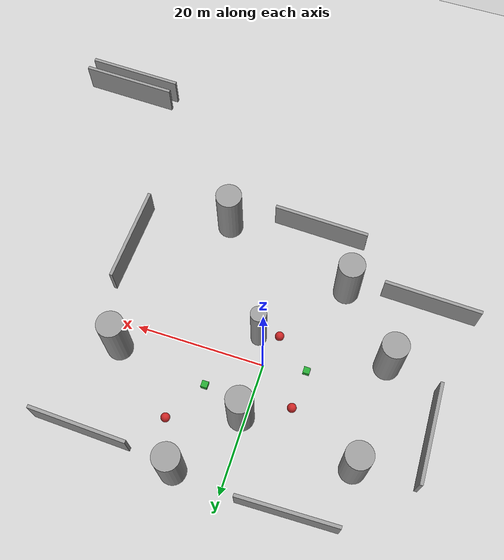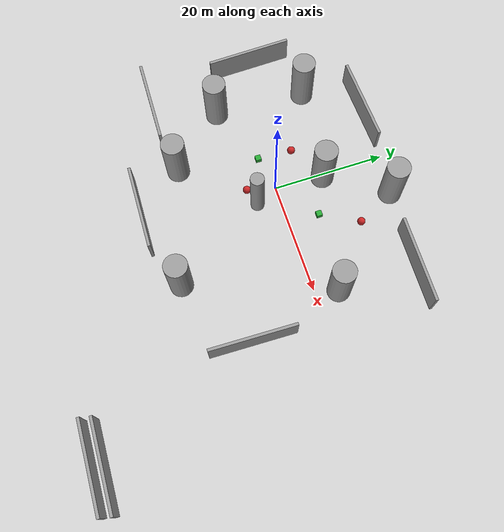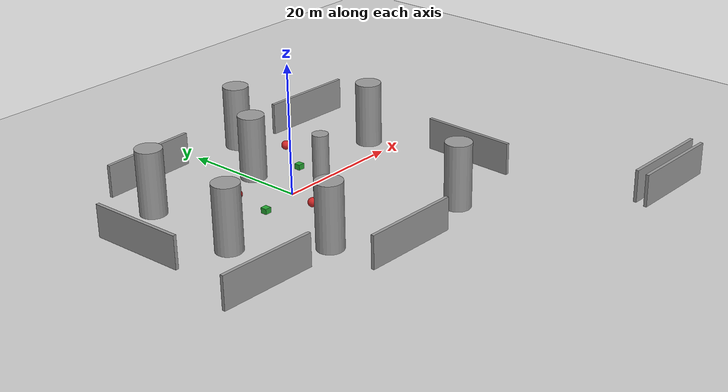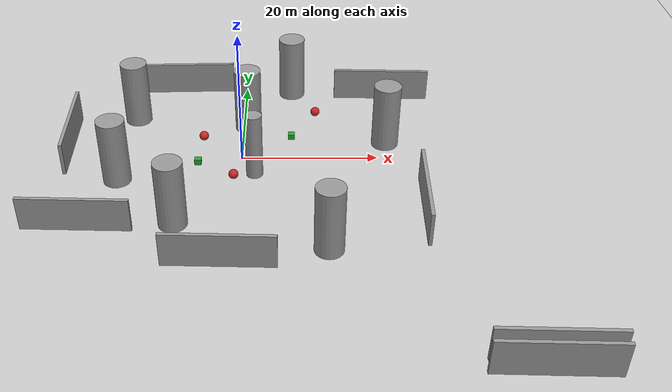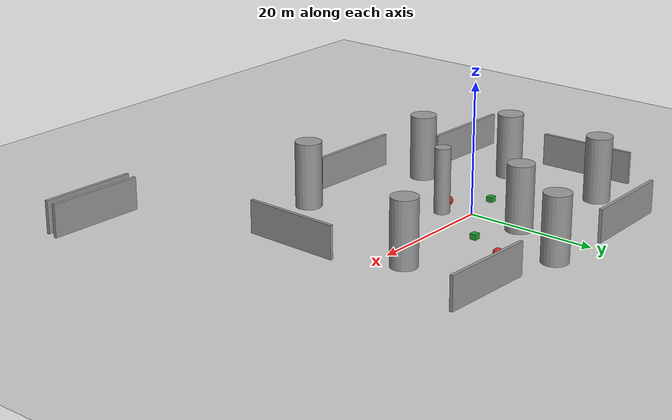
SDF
<sdf version="1.4">
 <world name="default">
  <light name="sun" type="directional">
   <pose>0 0 10 0 -0 0</pose>
   <diffuse>0.8 0.8 0.8 1</diffuse>
   <specular>0.2 0.2 0.2 1</specular>
   <attenuation>
    <range>1000</range>
    <constant>0.9</constant>
    <linear>0.01</linear>
    <quadratic>0.001</quadratic>
   </attenuation>
   <direction>-0.5 0.1 -0.9</direction>
  </light>
  <model name="ground_plane">
   <static>1</static>
   <link name="link">
    <collision name="collision">
     <geometry><plane><normal>0 0 1</normal><size>0 0</size></plane></geometry>
     <surface><friction><ode><mu>100</mu><mu2>50</mu2></ode></friction></surface>
    </collision>
    <visual name="visual">
     <cast_shadows>0</cast_shadows>
     <geometry><plane><normal>0 0 1</normal><size>0 0</size></plane></geometry>
     <material>
      <script><uri>file://media/materials/scripts/gazebo.material</uri><name>Gazebo/Grey</name></script>
     </material>
    </visual>
    <velocity_decay><linear>0</linear><angular>0</angular></velocity_decay>
   </link>
  </model>
  <physics type="ode">
   <max_step_size>0.001</max_step_size>
   <real_time_factor>1</real_time_factor>
   <real_time_update_rate>1000</real_time_update_rate>
   <gravity>0 0 -9.8</gravity>
  </physics>
  <scene><ambient>0.4 0.4 0.4 1</ambient><background>0.7 0.7 0.7 1</background><shadows>1</shadows></scene>
  <spherical_coordinates>
   <surface_model>EARTH_WGS84</surface_model>
   <latitude_deg>0</latitude_deg>
   <longitude_deg>0</longitude_deg>
   <elevation>0</elevation>
   <heading_deg>0</heading_deg>
  </spherical_coordinates>
  <model name="unit_cylinder_1">
   <pose>-8.56293 -15.4123 4.99999 -0 -0 -0.000106</pose>
   <link name="link">
    <inertial>
     <mass>1</mass>
     <inertia><ixx>1</ixx><ixy>0</ixy><ixz>0</ixz><iyy>1</iyy><iyz>0</iyz><izz>1</izz></inertia>
    </inertial>
    <collision name="collision">
     <geometry><cylinder><radius>2</radius><length>10</length></cylinder></geometry>
    </collision>
    <visual name="visual">
     <geometry><cylinder><radius>2</radius><length>10</length></cylinder></geometry>
     <material>
      <script><uri>file://media/materials/scripts/gazebo.material</uri><name>Gazebo/Grey</name></script>
     </material>
    </visual>
    <velocity_decay><linear>0</linear><angular>0</angular></velocity_decay>
   </link>
   <static>0</static>
  </model>
  <model name="unit_cylinder_2">
   <pose>7.33317 18.7739 4.99999 -0 -0 -0.000101</pose>
   <link name="link">
    <inertial>
     <mass>1</mass>
     <inertia><ixx>1</ixx><ixy>0</ixy><ixz>0</ixz><iyy>1</iyy><iyz>0</iyz><izz>1</izz></inertia>
    </inertial>
    <collision name="collision">
     <geometry><cylinder><radius>2</radius><length>10</length></cylinder></geometry>
    </collision>
    <visual name="visual">
     <geometry><cylinder><radius>2</radius><length>10</length></cylinder></geometry>
     <material>
      <script><uri>file://media/materials/scripts/gazebo.material</uri><name>Gazebo/Grey</name></script>
     </material>
    </visual>
    <velocity_decay><linear>0</linear><angular>0</angular></velocity_decay>
   </link>
   <static>0</static>
  </model>
  <model name="unit_cylinder_3">
   <pose>12.2266 -20.7777 5 0 -0 -0.0001</pose>
   <link name="link">
    <inertial>
     <mass>1</mass>
     <inertia><ixx>1</ixx><ixy>0</ixy><ixz>0</ixz><iyy>1</iyy><iyz>0</iyz><izz>1</izz></inertia>
    </inertial>
    <collision name="collision">
     <geometry><cylinder><radius>2</radius><length>10</length></cylinder></geometry>
    </collision>
    <visual name="visual">
     <geometry><cylinder><radius>2</radius><length>10</length></cylinder></geometry>
     <material>
      <script><uri>file://media/materials/scripts/gazebo.material</uri><name>Gazebo/Grey</name></script>
     </material>
    </visual>
    <velocity_decay><linear>0</linear><angular>0</angular></velocity_decay>
   </link>
   <static>0</static>
  </model>
  <model name="unit_cylinder_4">
   <pose>-17.5766 -5.45116 4.99999 -0 -0 -0.000102</pose>
   <link name="link">
    <inertial>
     <mass>1</mass>
     <inertia><ixx>1</ixx><ixy>0</ixy><ixz>0</ixz><iyy>1</iyy><iyz>0</iyz><izz>1</izz></inertia>
    </inertial>
    <collision name="collision">
     <geometry><cylinder><radius>2</radius><length>10</length></cylinder></geometry>
    </collision>
    <visual name="visual">
     <geometry><cylinder><radius>2</radius><length>10</length></cylinder></geometry>
     <material>
      <script><uri>file://media/materials/scripts/gazebo.material</uri><name>Gazebo/Grey</name></script>
     </material>
    </visual>
    <velocity_decay><linear>0</linear><angular>0</angular></velocity_decay>
   </link>
   <static>0</static>
  </model>
  <model name="unit_cylinder_5">
   <pose>0.636376 8.54346 4.99999 -0 -0 -0.000103</pose>
   <link name="link">
    <inertial>
     <mass>1</mass>
     <inertia><ixx>1</ixx><ixy>0</ixy><ixz>0</ixz><iyy>1</iyy><iyz>0</iyz><izz>1</izz></inertia>
    </inertial>
    <collision name="collision">
     <geometry><cylinder><radius>2</radius><length>10</length></cylinder></geometry>
    </collision>
    <visual name="visual">
     <geometry><cylinder><radius>2</radius><length>10</length></cylinder></geometry>
     <material>
      <script><uri>file://media/materials/scripts/gazebo.material</uri><name>Gazebo/Grey</name></script>
     </material>
    </visual>
    <velocity_decay><linear>0</linear><angular>0</angular></velocity_decay>
   </link>
   <static>0</static>
  </model>
  <model name="unit_cylinder_6">
   <pose>-16.7429 10.7723 4.99999 -0 -0 -0.000104</pose>
   <link name="link">
    <inertial>
     <mass>1</mass>
     <inertia><ixx>1</ixx><ixy>0</ixy><ixz>0</ixz><iyy>1</iyy><iyz>0</iyz><izz>1</izz></inertia>
    </inertial>
    <collision name="collision">
     <geometry><cylinder><radius>2</radius><length>10</length></cylinder></geometry>
    </collision>
    <visual name="visual">
     <geometry><cylinder><radius>2</radius><length>10</length></cylinder></geometry>
     <material>
      <script><uri>file://media/materials/scripts/gazebo.material</uri><name>Gazebo/Grey</name></script>
     </material>
    </visual>
    <velocity_decay><linear>0</linear><angular>0</angular></velocity_decay>
   </link>
   <static>0</static>
  </model>
  <model name="unit_cylinder_7">
   <pose>1.99991 -4.00002 4.99999 0 -0 0.000107</pose>
   <link name="link">
    <inertial>
     <mass>1</mass>
     <inertia><ixx>1</ixx><ixy>0</ixy><ixz>0</ixz><iyy>1</iyy><iyz>0</iyz><izz>1</izz></inertia>
    </inertial>
    <collision name="collision">
     <geometry><cylinder><radius>1.2</radius><length>10</length></cylinder></geometry>
    </collision>
    <visual name="visual">
     <geometry><cylinder><radius>1.2</radius><length>10</length></cylinder></geometry>
     <material>
      <script><uri>file://media/materials/scripts/gazebo.material</uri><name>Gazebo/Grey</name></script>
     </material>
    </visual>
    <velocity_decay><linear>0</linear><angular>0</angular></velocity_decay>
   </link>
   <static>0</static>
  </model>
  <model name="unit_cylinder_8">
   <pose>21.3784 3.9324 5 0 -0 -0.000104</pose>
   <link name="link">
    <inertial>
     <mass>1</mass>
     <inertia><ixx>1</ixx><ixy>0</ixy><ixz>0</ixz><iyy>1</iyy><iyz>0</iyz><izz>1</izz></inertia>
    </inertial>
    <collision name="collision">
     <geometry><cylinder><radius>2</radius><length>10</length></cylinder></geometry>
    </collision>
    <visual name="visual">
     <geometry><cylinder><radius>2</radius><length>10</length></cylinder></geometry>
     <material>
      <script><uri>file://media/materials/scripts/gazebo.material</uri><name>Gazebo/Grey</name></script>
     </material>
    </visual>
    <velocity_decay><linear>0</linear><angular>0</angular></velocity_decay>
   </link>
   <static>0</static>
  </model>
  <model name="unit_box_1">
   <pose>21.7058 17.5856 2.49667 -1.3e-05 0.000445 -0.02943</pose>
   <link name="link">
    <inertial>
     <mass>1</mass>
     <inertia><ixx>1</ixx><ixy>0</ixy><ixz>0</ixz><iyy>1</iyy><iyz>0</iyz><izz>1</izz></inertia>
    </inertial>
    <collision name="collision"><geometry><box><size>15 0.5 5</size></box></geometry></collision>
    <visual name="visual">
     <geometry><box><size>15 0.5 5</size></box></geometry>
     <material>
      <script><uri>file://media/materials/scripts/gazebo.material</uri><name>Gazebo/Grey</name></script>
     </material>
    </visual>
    <velocity_decay><linear>0</linear><angular>0</angular></velocity_decay>
   </link>
   <static>0</static>
  </model>
  <model name="unit_box_2">
   <pose>-21.3392 -16.5101 2.49667 -1.3e-05 0.000445 -0.02943</pose>
   <link name="link">
    <inertial>
     <mass>1</mass>
     <inertia><ixx>1</ixx><ixy>0</ixy><ixz>0</ixz><iyy>1</iyy><iyz>0</iyz><izz>1</izz></inertia>
    </inertial>
    <collision name="collision"><geometry><box><size>15 0.5 5</size></box></geometry></collision>
    <visual name="visual">
     <geometry><box><size>15 0.5 5</size></box></geometry>
     <material>
      <script><uri>file://media/materials/scripts/gazebo.material</uri><name>Gazebo/Grey</name></script>
     </material>
    </visual>
    <velocity_decay><linear>0</linear><angular>0</angular></velocity_decay>
   </link>
   <static>0</static>
  </model>
  <model name="unit_box_3">
   <pose>25.5795 -12.4613 2.49667 -1.3e-05 0.000445 1.54137</pose>
   <link name="link">
    <inertial>
     <mass>1</mass>
     <inertia><ixx>1</ixx><ixy>0</ixy><ixz>0</ixz><iyy>1</iyy><iyz>0</iyz><izz>1</izz></inertia>
    </inertial>
    <collision name="collision"><geometry><box><size>15 0.5 5</size></box></geometry></collision>
    <visual name="visual">
     <geometry><box><size>15 0.5 5</size></box></geometry>
     <material>
      <script><uri>file://media/materials/scripts/gazebo.material</uri><name>Gazebo/Grey</name></script>
     </material>
    </visual>
    <velocity_decay><linear>0</linear><angular>0</angular></velocity_decay>
   </link>
   <static>0</static>
  </model>
  <model name="unit_box_4">
   <pose>-9.73128 19.7162 2.49667 -1.3e-05 -0.000445 0.02943</pose>
   <link name="link">
    <inertial>
     <mass>1</mass>
     <inertia><ixx>1</ixx><ixy>0</ixy><ixz>0</ixz><iyy>1</iyy><iyz>0</iyz><izz>1</izz></inertia>
    </inertial>
    <collision name="collision"><geometry><box><size>15 0.5 5</size></box></geometry></collision>
    <visual name="visual">
     <geometry><box><size>15 0.5 5</size></box></geometry>
     <material>
      <script><uri>file://media/materials/scripts/gazebo.material</uri><name>Gazebo/Grey</name></script>
     </material>
    </visual>
    <velocity_decay><linear>0</linear><angular>0</angular></velocity_decay>
   </link>
   <static>0</static>
  </model>
  <model name="unit_box_5">
   <pose>36.4602 -41.6482 2.49667 1.3e-05 -0.000445 -0.02943</pose>
   <link name="link">
    <inertial>
     <mass>1</mass>
     <inertia><ixx>1</ixx><ixy>0</ixy><ixz>0</ixz><iyy>1</iyy><iyz>0</iyz><izz>1</izz></inertia>
    </inertial>
    <collision name="collision"><geometry><box><size>15 0.5 5</size></box></geometry></collision>
    <visual name="visual">
     <geometry><box><size>15 0.5 5</size></box></geometry>
     <material>
      <script><uri>file://media/materials/scripts/gazebo.material</uri><name>Gazebo/Grey</name></script>
     </material>
    </visual>
    <velocity_decay><linear>0</linear><angular>0</angular></velocity_decay>
   </link>
   <static>0</static>
  </model>
  <model name="unit_box_6">
   <pose>36.8484 -39.7473 2.49667 -1.3e-05 0.000445 -0.02943</pose>
   <link name="link">
    <inertial>
     <mass>1</mass>
     <inertia><ixx>1</ixx><ixy>0</ixy><ixz>0</ixz><iyy>1</iyy><iyz>0</iyz><izz>1</izz></inertia>
    </inertial>
    <collision name="collision"><geometry><box><size>15 0.5 5</size></box></geometry></collision>
    <visual name="visual">
     <geometry><box><size>15 0.5 5</size></box></geometry>
     <material>
      <script><uri>file://media/materials/scripts/gazebo.material</uri><name>Gazebo/Grey</name></script>
     </material>
    </visual>
    <velocity_decay><linear>0</linear><angular>0</angular></velocity_decay>
   </link>
   <static>0</static>
  </model>
  <model name="unit_box_7">
   <pose>-1.87283 -23.7687 2.49667 1.3e-05 -0.000445 -0.02943</pose>
   <link name="link">
    <inertial>
     <mass>1</mass>
     <inertia><ixx>1</ixx><ixy>0</ixy><ixz>0</ixz><iyy>1</iyy><iyz>0</iyz><izz>1</izz></inertia>
    </inertial>
    <collision name="collision"><geometry><box><size>15 0.5 5</size></box></geometry></collision>
    <visual name="visual">
     <geometry><box><size>15 0.5 5</size></box></geometry>
     <material>
      <script><uri>file://media/materials/scripts/gazebo.material</uri><name>Gazebo/Grey</name></script>
     </material>
    </visual>
    <velocity_decay><linear>0</linear><angular>0</angular></velocity_decay>
   </link>
   <static>0</static>
  </model>
  <model name="unit_box_8">
   <pose>-25.7205 3.41895 2.49667 -1.3e-05 -0.000445 -1.54137</pose>
   <link name="link">
    <inertial>
     <mass>1</mass>
     <inertia><ixx>1</ixx><ixy>0</ixy><ixz>0</ixz><iyy>1</iyy><iyz>0</iyz><izz>1</izz></inertia>
    </inertial>
    <collision name="collision"><geometry><box><size>15 0.5 5</size></box></geometry></collision>
    <visual name="visual">
     <geometry><box><size>15 0.5 5</size></box></geometry>
     <material>
      <script><uri>file://media/materials/scripts/gazebo.material</uri><name>Gazebo/Grey</name></script>
     </material>
    </visual>
    <velocity_decay><linear>0</linear><angular>0</angular></velocity_decay>
   </link>
   <static>0</static>
  </model>
  <model name="unit_sphere_1">
   <pose>-6 5 0.7 0 -0 0</pose>
   <link name="link">
    <inertial>
     <mass>1</mass>
     <inertia><ixx>1</ixx><ixy>0</ixy><ixz>0</ixz><iyy>1</iyy><iyz>0</iyz><izz>1</izz></inertia>
    </inertial>
    <collision name="collision"><geometry><sphere><radius>0.7</radius></sphere></geometry></collision>
    <visual name="visual">
     <geometry><sphere><radius>0.7</radius></sphere></geometry>
     <material>
      <script><uri>file://media/materials/scripts/gazebo.material</uri><name>Gazebo/Red</name></script>
     </material>
    </visual>
    <velocity_decay><linear>0</linear><angular>0</angular></velocity_decay>
   </link>
   <static>0</static>
  </model>
  <model name="unit_sphere_2">
   <pose>-1 -5 0.7 0 -0 0</pose>
   <link name="link">
    <inertial>
     <mass>1</mass>
     <inertia><ixx>1</ixx><ixy>0</ixy><ixz>0</ixz><iyy>1</iyy><iyz>0</iyz><izz>1</izz></inertia>
    </inertial>
    <collision name="collision"><geometry><sphere><radius>0.7</radius></sphere></geometry></collision>
    <visual name="visual">
     <geometry><sphere><radius>0.7</radius></sphere></geometry>
     <material>
      <script><uri>file://media/materials/scripts/gazebo.material</uri><name>Gazebo/Red</name></script>
     </material>
    </visual>
    <velocity_decay><linear>0</linear><angular>0</angular></velocity_decay>
   </link>
   <static>0</static>
  </model>
  <model name="unit_sphere_3">
   <pose>11 12 0.7 0 -0 0</pose>
   <link name="link">
    <inertial>
     <mass>1</mass>
     <inertia><ixx>1</ixx><ixy>0</ixy><ixz>0</ixz><iyy>1</iyy><iyz>0</iyz><izz>1</izz></inertia>
    </inertial>
    <collision name="collision"><geometry><sphere><radius>0.7</radius></sphere></geometry></collision>
    <visual name="visual">
     <geometry><sphere><radius>0.7</radius></sphere></geometry>
     <material>
      <script><uri>file://media/materials/scripts/gazebo.material</uri><name>Gazebo/Red</name></script>
     </material>
    </visual>
    <velocity_decay><linear>0</linear><angular>0</angular></velocity_decay>
   </link>
   <static>0</static>
  </model>
  <model name="unit_box_1_0">
   <pose>7.26195 5.55368 0.255003 0 -0 7e-05</pose>
   <link name="link">
    <inertial>
     <mass>1</mass>
     <inertia><ixx>1</ixx><ixy>0</ixy><ixz>0</ixz><iyy>1</iyy><iyz>0</iyz><izz>1</izz></inertia>
    </inertial>
    <collision name="collision">
     <geometry><box><size>0.455981 0.310766 0.510007</size></box></geometry>
    </collision>
    <visual name="visual">
     <geometry><box><size>1 1 1</size></box></geometry>
     <material>
      <script><uri>file://media/materials/scripts/gazebo.material</uri><name>Gazebo/Green</name></script>
     </material>
    </visual>
    <velocity_decay><linear>0</linear><angular>0</angular></velocity_decay>
   </link>
   <static>0</static>
  </model>
  <model name="unit_box_2_0">
   <pose>-6.44039 -1.12444 0.232598 1e-06 -2e-06 2e-06</pose>
   <link name="link">
    <inertial>
     <mass>1</mass>
     <inertia><ixx>1</ixx><ixy>0</ixy><ixz>0</ixz><iyy>1</iyy><iyz>0</iyz><izz>1</izz></inertia>
    </inertial>
    <collision name="collision">
     <geometry><box><size>0.549352 0.427904 0.465197</size></box></geometry>
    </collision>
    <visual name="visual">
     <geometry><box><size>1 1 1</size></box></geometry>
     <material>
      <script><uri>file://media/materials/scripts/gazebo.material</uri><name>Gazebo/Green</name></script>
     </material>
    </visual>
    <velocity_decay><linear>0</linear><angular>0</angular></velocity_decay>
   </link>
   <static>0</static>
  </model>
 </world>
</sdf>
